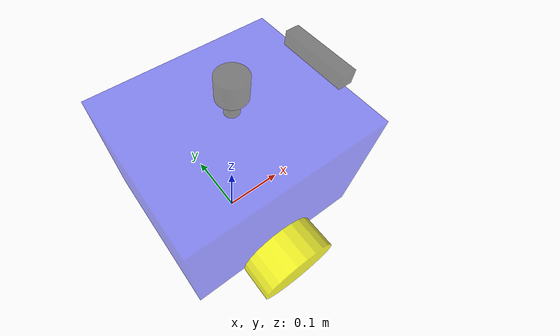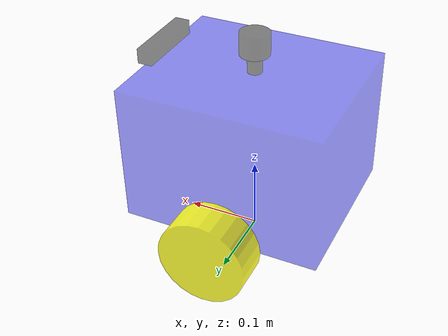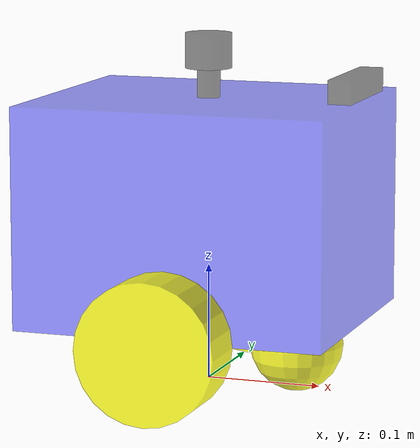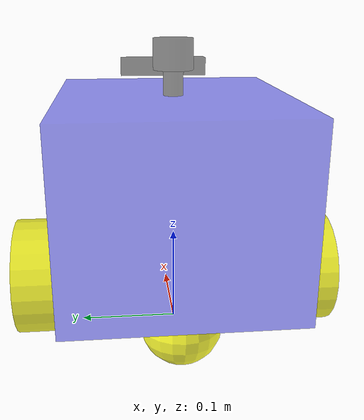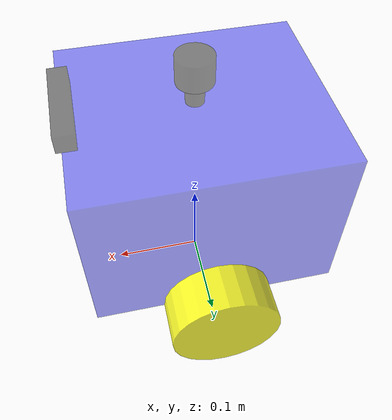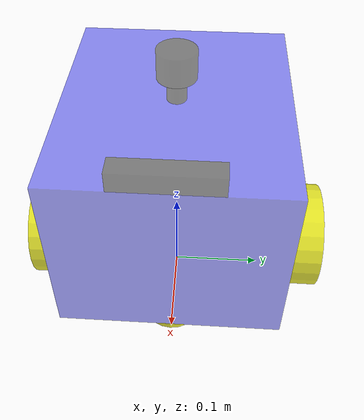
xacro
<?xml version="1.0"?>
<robot xmlns:xacro="http://www.ros.org/wiki/xacro" name="wheelbot_reference">
  <xacro:include filename="$(find rdk_transport_description)/urdf/wheelbot_reference/wheellegbot/base.urdf.xacro"/>
  <xacro:include filename="$(find rdk_transport_description)/urdf/wheelbot_reference/wheellegbot/sensor/imu.urdf.xacro"/>
  <xacro:include filename="$(find rdk_transport_description)/urdf/wheelbot_reference/wheellegbot/sensor/laser.urdf.xacro"/>
  <xacro:include filename="$(find rdk_transport_description)/urdf/wheelbot_reference/wheellegbot/sensor/camera.urdf.xacro"/>
  <xacro:include filename="$(find rdk_transport_description)/urdf/wheelbot_reference/wheellegbot/actuator/wheel.urdf.xacro"/>
  <xacro:include filename="$(find rdk_transport_description)/urdf/wheelbot_reference/wheellegbot/actuator/caster.urdf.xacro"/>

  <xacro:base_xacro xyz="0.27 0.23 0.19"/>
  <xacro:imu_xacro xyz="0.0 0.0 0.02"/>
  <xacro:camera_xacro xyz="0.13 0.0 0.11"/>
  <xacro:laser_xacro xyz="0.0 0.0 0.115"/>
  <xacro:wheel_xacro wheel_name="left_wheel" xyz="0 0.14 -0.095"/>
  <xacro:wheel_xacro wheel_name="right_wheel" xyz="0 -0.14 -0.095"/>
  <xacro:caster_xacro caster_name="front_caster" xyz="0.08 0 -0.115"/>
  <xacro:caster_xacro caster_name="back_caster" xyz="-0.08 0 -0.115"/>
</robot>

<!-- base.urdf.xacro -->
<robot xmlns:xacro="http://www.ros.org/wiki/xacro">
  <xacro:include filename="$(find rdk_transport_description)/urdf/wheelbot_reference/wheellegbot/common_inertia.xacro"/>

  <xacro:macro name="base_xacro" params="xyz">
    <link name="base_footprint"/>

    <link name="base_link">
      <visual>
        <origin xyz="0 0 0" rpy="0 0 0"/>
        <geometry>
          <box size="${xyz}"/>
        </geometry>
        <material name="wheelbot_base_blue">
          <color rgba="0.1 0.1 1.0 0.5"/>
        </material>
      </visual>
      <collision>
        <origin xyz="0 0 0" rpy="0 0 0"/>
        <geometry>
          <box size="${xyz}"/>
        </geometry>
      </collision>
      <xacro:box_inertia m="2.0" w="0.27" d="0.23" h="0.19"/>
    </link>

    <joint name="base_footprint_to_base_link" type="fixed">
      <origin xyz="0.0 0.0 0.151" rpy="0.0 0.0 0.0"/>
      <parent link="base_footprint"/>
      <child link="base_link"/>
    </joint>
  </xacro:macro>
</robot>

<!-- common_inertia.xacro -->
<robot xmlns:xacro="http://www.ros.org/wiki/xacro">
  <xacro:macro name="box_inertia" params="m w h d">
    <inertial>
      <mass value="${m}"/>
      <inertia
        ixx="${(m / 12.0) * (h * h + d * d)}"
        ixy="0.0"
        ixz="0.0"
        iyy="${(m / 12.0) * (w * w + d * d)}"
        iyz="0.0"
        izz="${(m / 12.0) * (w * w + h * h)}"/>
    </inertial>
  </xacro:macro>

  <xacro:macro name="cylinder_inertia" params="m r h">
    <inertial>
      <mass value="${m}"/>
      <inertia
        ixx="${(m / 12.0) * (3.0 * r * r + h * h)}"
        ixy="0.0"
        ixz="0.0"
        iyy="${(m / 12.0) * (3.0 * r * r + h * h)}"
        iyz="0.0"
        izz="${(m / 2.0) * (r * r)}"/>
    </inertial>
  </xacro:macro>

  <xacro:macro name="sphere_inertia" params="m r">
    <inertial>
      <mass value="${m}"/>
      <inertia
        ixx="${(2.0 / 5.0) * m * (r * r)}"
        ixy="0.0"
        ixz="0.0"
        iyy="${(2.0 / 5.0) * m * (r * r)}"
        iyz="0.0"
        izz="${(2.0 / 5.0) * m * (r * r)}"/>
    </inertial>
  </xacro:macro>
</robot>

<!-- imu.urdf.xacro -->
<robot xmlns:xacro="http://www.ros.org/wiki/xacro">
  <xacro:include filename="$(find rdk_transport_description)/urdf/wheelbot_reference/wheellegbot/common_inertia.xacro"/>

  <xacro:macro name="imu_xacro" params="xyz">
    <link name="imu_link">
      <visual>
        <origin xyz="0 0 0" rpy="0 0 0"/>
        <geometry>
          <box size="0.02 0.02 0.02"/>
        </geometry>
        <material name="wheelbot_sensor_black">
          <color rgba="0 0 0 0.5"/>
        </material>
      </visual>
      <collision>
        <origin xyz="0 0 0" rpy="0 0 0"/>
        <geometry>
          <box size="0.02 0.02 0.02"/>
        </geometry>
      </collision>
      <xacro:box_inertia m="0.5" w="0.02" d="0.02" h="0.02"/>
    </link>

    <joint name="imu_joint" type="fixed">
      <parent link="base_link"/>
      <child link="imu_link"/>
      <origin xyz="${xyz}"/>
    </joint>
  </xacro:macro>
</robot>

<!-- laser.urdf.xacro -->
<robot xmlns:xacro="http://www.ros.org/wiki/xacro">
  <xacro:include filename="$(find rdk_transport_description)/urdf/wheelbot_reference/wheellegbot/common_inertia.xacro"/>

  <xacro:macro name="laser_xacro" params="xyz">
    <link name="laser_cylinder_link">
      <visual>
        <origin xyz="0 0 0" rpy="0 0 0"/>
        <geometry>
          <cylinder radius="0.01" length="0.04"/>
        </geometry>
        <material name="wheelbot_laser_black">
          <color rgba="0 0 0 0.5"/>
        </material>
      </visual>
    </link>

    <link name="laser">
      <visual>
        <origin xyz="0 0 0" rpy="0 0 0"/>
        <geometry>
          <cylinder radius="0.02" length="0.03"/>
        </geometry>
        <material name="wheelbot_laser_body_black">
          <color rgba="0 0 0 0.5"/>
        </material>
      </visual>
      <collision>
        <origin xyz="0 0 0" rpy="0 0 0"/>
        <geometry>
          <cylinder radius="0.02" length="0.03"/>
        </geometry>
      </collision>
      <xacro:cylinder_inertia m="0.050" r="0.02" h="0.03"/>
    </link>

    <joint name="laser_joint" type="fixed">
      <parent link="laser_cylinder_link"/>
      <child link="laser"/>
      <origin xyz="0.0 0.0 0.02"/>
    </joint>

    <joint name="laser_cylinder_joint" type="fixed">
      <parent link="base_link"/>
      <child link="laser_cylinder_link"/>
      <origin xyz="${xyz}"/>
    </joint>
  </xacro:macro>
</robot>

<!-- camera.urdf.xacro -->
<robot xmlns:xacro="http://www.ros.org/wiki/xacro">
  <xacro:include filename="$(find rdk_transport_description)/urdf/wheelbot_reference/wheellegbot/common_inertia.xacro"/>

  <xacro:macro name="camera_xacro" params="xyz">
    <link name="camera_link">
      <visual>
        <origin xyz="0 0 0" rpy="0 0 0"/>
        <geometry>
          <box size="0.02 0.10 0.02"/>
        </geometry>
        <material name="wheelbot_camera_black">
          <color rgba="0 0 0 0.5"/>
        </material>
      </visual>
      <collision>
        <origin xyz="0 0 0" rpy="0 0 0"/>
        <geometry>
          <box size="0.02 0.10 0.02"/>
        </geometry>
      </collision>
      <xacro:box_inertia m="0.1" w="0.02" d="0.10" h="0.02"/>
    </link>

    <joint name="camera_joint" type="fixed">
      <parent link="base_link"/>
      <child link="camera_link"/>
      <origin xyz="${xyz}"/>
    </joint>
  </xacro:macro>
</robot>

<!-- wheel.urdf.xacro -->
<robot xmlns:xacro="http://www.ros.org/wiki/xacro">
  <xacro:include filename="$(find rdk_transport_description)/urdf/wheelbot_reference/wheellegbot/common_inertia.xacro"/>

  <xacro:macro name="wheel_xacro" params="wheel_name xyz">
    <link name="${wheel_name}_link">
      <visual>
        <origin xyz="0 0 0" rpy="1.57079 0 0"/>
        <geometry>
          <cylinder radius="0.06" length="0.05"/>
        </geometry>
        <material name="wheelbot_wheel_yellow">
          <color rgba="1.0 1.0 0 0.8"/>
        </material>
      </visual>
      <collision>
        <origin xyz="0 0 0" rpy="1.57079 0 0"/>
        <geometry>
          <cylinder radius="0.06" length="0.05"/>
        </geometry>
      </collision>
      <xacro:cylinder_inertia m="0.5" r="0.06" h="0.05"/>
    </link>

    <joint name="${wheel_name}_joint" type="continuous">
      <parent link="base_link"/>
      <child link="${wheel_name}_link"/>
      <origin xyz="${xyz}"/>
      <axis xyz="0 1 0"/>
    </joint>
  </xacro:macro>
</robot>

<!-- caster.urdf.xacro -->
<robot xmlns:xacro="http://www.ros.org/wiki/xacro">
  <xacro:include filename="$(find rdk_transport_description)/urdf/wheelbot_reference/wheellegbot/common_inertia.xacro"/>

  <xacro:macro name="caster_xacro" params="caster_name xyz">
    <link name="${caster_name}_link">
      <visual>
        <origin xyz="0 0 0" rpy="0 0 0"/>
        <geometry>
          <sphere radius="0.04"/>
        </geometry>
        <material name="wheelbot_caster_yellow">
          <color rgba="1.0 1.0 0 0.8"/>
        </material>
      </visual>
      <collision>
        <origin xyz="0 0 0" rpy="0 0 0"/>
        <geometry>
          <sphere radius="0.04"/>
        </geometry>
      </collision>
      <xacro:sphere_inertia m="0.01" r="0.04"/>
    </link>

    <joint name="${caster_name}_joint" type="fixed">
      <parent link="base_link"/>
      <child link="${caster_name}_link"/>
      <origin xyz="${xyz}"/>
    </joint>
  </xacro:macro>
</robot>
